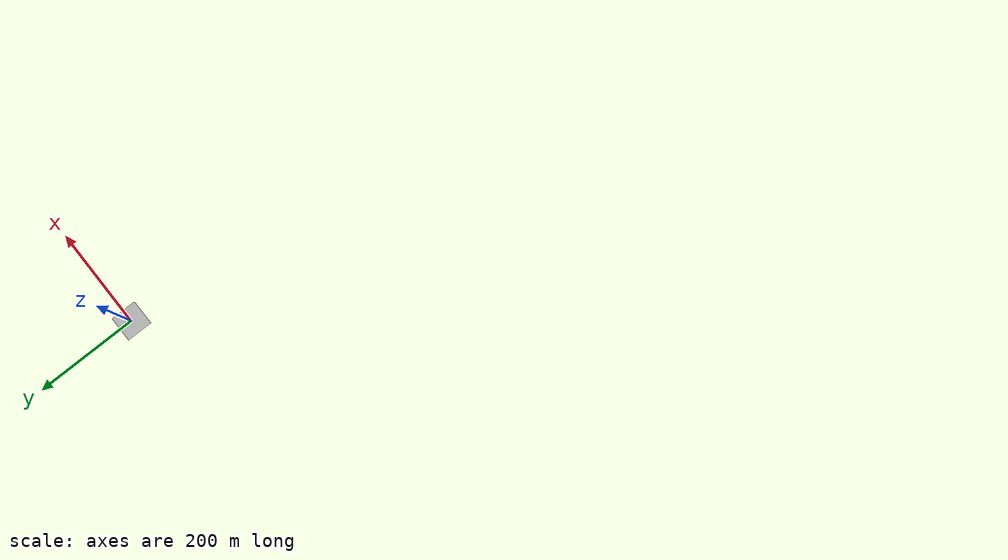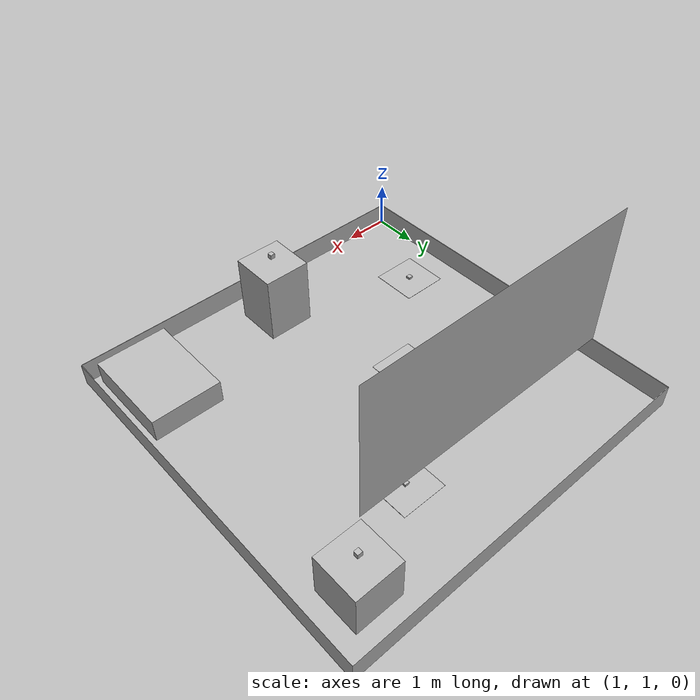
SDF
<?xml version="1.0" ?>
<sdf version="1.10">
  <world name="fase2">
    <plugin
      filename="gz-sim-physics-system"
      name="gz::sim::systems::Physics">
    </plugin>
    <plugin
      filename="gz-sim-user-commands-system"
      name="gz::sim::systems::UserCommands">
    </plugin>
    <plugin
      filename="gz-sim-scene-broadcaster-system"
      name="gz::sim::systems::SceneBroadcaster">
    </plugin>
    <plugin
      filename="gz-sim-sensors-system"
      name="gz::sim::systems::Sensors">
      <render_engine>ogre2</render_engine>
    </plugin>
    <plugin
      filename="gz-sim-imu-system"
      name="gz::sim::systems::Imu">
    </plugin>
    <plugin
      filename="gz-sim-air-speed-system"
      name="gz::sim::systems::AirSpeed">
    </plugin>
    <plugin
      name='gz::sim::systems::AirPressure'
      filename='gz-sim-air-pressure-system'>
    </plugin>

    <light type="directional" name="sun">
      <cast_shadows>true</cast_shadows>
      <pose>0 0 20 0 0 0</pose>
      <ambient>0.8 0.8 0.8 1</ambient>
      <diffuse>1.0 1.0 1.0 1</diffuse>
      <specular>0.2 0.2 0.2 1</specular>
      <attenuation>
        <range>1000</range>
        <constant>0.9</constant>
        <linear>0.01</linear>
        <quadratic>0.001</quadratic>
      </attenuation>
      <direction>-0.5 0.1 -0.9</direction>
    </light>

    <!-- setup shadows {-->
    <scene>
      <shadows>false</shadows>
      <sky>
        <clouds />
      </sky>
    </scene>

    <!-- ground plane {-->
    <model name="ground_plane">
      <static>true</static>
      <link name="link">
        <collision name="collision">
          <pose>0 0 0 0 0 0</pose>
          <geometry>
            <plane>
              <normal>0 0 1</normal>
              <size>250 250</size>
            </plane>
          </geometry>
          <surface>
            <friction>
              <ode>
                <mu>1</mu>
                <mu2>1</mu2>
              </ode>
            </friction>
          </surface>
        </collision>
        <visual name="grass">
          <pose>0 0 0 0 0 0</pose>
          <cast_shadows>false</cast_shadows>
          <geometry>
            <mesh>
              <uri>file://grass_plane/meshes/grass_plane.dae</uri>
            </mesh>
          </geometry>
        </visual>
      </link>
    </model>

    <!-- THE VOID (for spawning objects out of camera view) {-->
    <model name='the_void'>
      <static>1</static>
      <link name='link'>
        <pose frame=''>0 0 0.1 0 -0 0</pose>
        <visual name='the_void'>
          <pose frame=''>0 0 2 0 -0 0</pose>
          <geometry>
            <sphere>
              <radius>0.25</radius>
            </sphere>
          </geometry>
          <material>
            <script>
              <uri>file://media/materials/scripts/Gazebo.material</uri>
              <name>Gazebo/Black</name>
            </script>
          </material>
        </visual>
        <self_collide>0</self_collide>
        <enable_wind>0</enable_wind>
        <kinematic>0</kinematic>
      </link>
      <pose frame=''>-1000 -1000 0 0 0 0</pose>
    </model>

    <!-- user camera {-->
    <gui>
      <camera name="camera">
        <pose>-4 -4 7 0 0.4 0.89</pose>
      </camera>
    </gui>

    <!-- Models Worlds -->

    <!-- THE ARENA MODEL -->
    <model name="arena">
      <include>
        <uri>model://arena_spawn</uri>
        <!-- Pose ( x y z r p y ) -->
        <pose>1 1 0.001 0 -0 0</pose>
      </include>
    </model>

    <!-- THE TAKEOFF PLATFORM MODEL -->
    <model name="takeoff_platform">
      <include>
        <uri>model://takeoff_platform</uri>
        <pose>8.0 2.2 0.0 0.0 -0.0 0.0</pose>
      </include>
    </model>

    <!-- THE BANNER MODEL -->
    <model name="banner">
      <include>
        <uri>model://banner</uri>
        <pose>1.0 -0.6 0.29 3.14 -0 1.57</pose>
      </include>
    </model>

    <!-- THE SUSPENDED LANDING PLATFORM MODEL -->
    <model name="suspended_landing_platform_1">
      <include>
        <uri>model://suspended_landing_platform</uri>
        <pose>8.0 8.0 1.00 0 -0 0</pose>
      </include>
    </model>

    <model name="suspended_landing_platform_2">
      <include>
        <uri>model://suspended_landing_platform</uri>
        <pose>5.0 2.0 1.505 0 -0 0</pose>
      </include>
    </model>

    <!-- THE LANDING PLATFORM MODEL-->
    <model name="landing_platform_1">
      <include>
        <uri>model://landing_platform</uri>
        <pose>4 5 0.01 0 -0 0</pose>
      </include>
    </model>

    <model name="landing_platform_2">
      <include>
        <uri>model://landing_platform</uri>
        <pose>6 7 0.01 0 -0 0</pose>
      </include>
    </model>

    <model name="landing_platform_3">
      <include>
        <uri>model://landing_platform</uri>
        <pose>2 3 0.01 0 -0 0</pose>
      </include>
    </model>

    <!-- THE EQUIPMENT A MODEL -->
    <include>
      <uri>model://qrcode_box_a</uri>
      <!-- Pose ( x y z r p y ) -->
      <pose>4 5 0.015 0 -0 0</pose>
    </include>

    <!-- THE EQUIPMENT B MODEL -->
    <include>
      <uri>model://qrcode_box_b</uri>
      <!-- Pose ( x y z r p y ) -->
      <pose>6 7 0.015 0 -0 0</pose>
    </include>

    <!-- THE EQUIPMENT C MODEL -->
    <include>
      <uri>model://qrcode_box_c</uri>
      <!-- Pose ( x y z r p y ) -->
      <pose>2 3 0.015 0 -0 0</pose>
    </include>

    <!-- THE EQUIPMENT D MODEL -->
    <include>
      <uri>model://qrcode_box_d</uri>
      <!-- Pose ( x y z r p y ) -->
      <pose>5.0 2.0 1.67 0 -0 0</pose>
    </include>

    <!-- THE EQUIPMENT E MODEL -->
    <include>
      <uri>model://qrcode_box_e</uri>
      <!-- Pose ( x y z r p y ) -->
      <pose>8 8 1.17 0 -0 0</pose>
    </include>

  </world>
</sdf>

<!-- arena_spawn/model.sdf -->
<sdf version='1.6'>
  <model name='arena_spawn'>
    <link name='link_arena'>
      <inertial>
        <mass>1</mass>
        <inertia>
          <ixx>0.166667</ixx>
          <ixy>0</ixy>
          <ixz>0</ixz>
          <iyy>0.166667</iyy>
          <iyz>0</iyz>
          <izz>0.166667</izz>
        </inertia>
      </inertial>
      <self_collide>1</self_collide>
      <enable_wind>0</enable_wind>
      <kinematic>0</kinematic>
      <pose frame=''>0 0 0 0 -0 0</pose>
      <visual name='visual'>
        <pose frame=''>0 0 0 0 -0 0</pose>
        <geometry>
          <mesh>
            <uri>model://arena_spawn/meshes/Arena.obj</uri>
            <scale>1 1 1</scale>
          </mesh>
        </geometry>
        <transparency>0</transparency>
        <cast_shadows>1</cast_shadows>
      </visual>
      <collision name='collision'>
        <laser_retro>0</laser_retro>
        <max_contacts>10</max_contacts>
        <pose frame=''>0 0 0 0 -0 0</pose>
        <geometry>
          <mesh>
            <uri>model://arena_spawn/meshes/Arena.obj</uri>
            <scale>1 1 1</scale>
          </mesh>
        </geometry>
        <surface>
          <friction>
            <ode>
              <mu>1</mu>
              <mu2>1</mu2>
              <fdir1>0 0 0</fdir1>
              <slip1>0</slip1>
              <slip2>0</slip2>
            </ode>
            <torsional>
              <coefficient>1</coefficient>
              <patch_radius>100</patch_radius>
              <surface_radius>100</surface_radius>
              <use_patch_radius>1</use_patch_radius>
              <ode>
                <slip>0</slip>
              </ode>
            </torsional>
          </friction>
          <bounce>
            <restitution_coefficient>0</restitution_coefficient>
            <threshold>1e+06</threshold>
          </bounce>
          <contact>
            <collide_without_contact>0</collide_without_contact>
            <collide_without_contact_bitmask>1</collide_without_contact_bitmask>
            <collide_bitmask>1</collide_bitmask>
            <ode>
              <soft_cfm>0</soft_cfm>
              <soft_erp>0.2</soft_erp>
              <kp>1e+13</kp>
              <kd>1</kd>
              <max_vel>0.01</max_vel>
              <min_depth>0</min_depth>
            </ode>
            <bullet>
              <split_impulse>1</split_impulse>
              <split_impulse_penetration_threshold>-0.01</split_impulse_penetration_threshold>
              <soft_cfm>0</soft_cfm>
              <soft_erp>0.2</soft_erp>
              <kp>1e+13</kp>
              <kd>1</kd>
            </bullet>
          </contact>
        </surface>
      </collision>
    </link>
    <static>1</static>
    <pose frame=''>0 0 0.0005 0 -0 0</pose>
  </model>
</sdf>

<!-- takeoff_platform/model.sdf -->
<sdf version='1.6'>
  <model name='takeoff_platform'>
    <link name='link_takeoff_platform'>
      <inertial>
        <mass>15</mass>
        <inertia>
          <ixx>1</ixx>
          <ixy>0</ixy>
          <ixz>0</ixz>
          <iyy>1</iyy>
          <iyz>0</iyz>
          <izz>1</izz>
        </inertia>
      </inertial>
      <self_collide>1</self_collide>
      <enable_wind>0</enable_wind>
      <kinematic>0</kinematic>
      <pose frame=''>0 0 0 0 -0 0</pose>
      <visual name='visual'>
        <pose frame=''>0 0 0 0 -0 0</pose>
        <geometry>
          <mesh>
            <uri>model://takeoff_platform/meshes/takeoff_platform.obj</uri>
            <scale>1 1 1</scale>
          </mesh>
        </geometry>
        <transparency>0</transparency>
        <cast_shadows>1</cast_shadows>
      </visual>
      <collision name='collision'>
        <laser_retro>0</laser_retro>
        <max_contacts>10</max_contacts>
        <pose frame=''>0 0 0 0 -0 0</pose>
        <geometry>
          <mesh>
            <uri>model://takeoff_platform/meshes/takeoff_platform.obj</uri>
            <scale>1 1 1</scale>
          </mesh>
        </geometry>
        <surface>
          <friction>
            <ode>
              <mu>1</mu>
              <mu2>1</mu2>
              <fdir1>0 0 0</fdir1>
              <slip1>0</slip1>
              <slip2>0</slip2>
            </ode>
            <torsional>
              <coefficient>1</coefficient>
              <patch_radius>100</patch_radius>
              <surface_radius>100</surface_radius>
              <use_patch_radius>1</use_patch_radius>
              <ode>
                <slip>0</slip>
              </ode>
            </torsional>
          </friction>
          <bounce>
            <restitution_coefficient>0</restitution_coefficient>
            <threshold>1e+06</threshold>
          </bounce>
          <contact>
            <collide_without_contact>0</collide_without_contact>
            <collide_without_contact_bitmask>1</collide_without_contact_bitmask>
            <collide_bitmask>1</collide_bitmask>
            <ode>
              <soft_cfm>0</soft_cfm>
              <soft_erp>0.2</soft_erp>
              <kp>1e+13</kp>
              <kd>1</kd>
              <max_vel>0.01</max_vel>
              <min_depth>0</min_depth>
            </ode>
            <bullet>
              <split_impulse>1</split_impulse>
              <split_impulse_penetration_threshold>-0.01</split_impulse_penetration_threshold>
              <soft_cfm>0</soft_cfm>
              <soft_erp>0.2</soft_erp>
              <kp>1e+13</kp>
              <kd>1</kd>
            </bullet>
          </contact>
        </surface>
      </collision>
    </link>
    <static>1</static>
    <pose frame=''>0 0 0.0005 0 -0 0</pose>
  </model>
</sdf>

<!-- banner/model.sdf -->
<sdf version='1.6'>
  <model name='banner'>
    <link name='link_0'>
      <inertial>
        <mass>1</mass>
        <inertia>
          <ixx>0.166667</ixx>
          <ixy>0</ixy>
          <ixz>0</ixz>
          <iyy>0.166667</iyy>
          <iyz>0</iyz>
          <izz>0.166667</izz>
        </inertia>
      </inertial>
      <pose>0 0 0 0 -0 0</pose>
      <visual name='visual'>
        <pose>0 0 0 0 -0 0</pose>
        <geometry>
          <mesh>
            <uri>model://banner/meshes/banner.obj</uri>
            <scale>1.0 1.0 1.0</scale>
          </mesh>
        </geometry>
        <transparency>0</transparency>
        <cast_shadows>1</cast_shadows>
      </visual>
      <collision name='collision'>
        <laser_retro>0</laser_retro>
        <max_contacts>10</max_contacts>
        <pose>0 0 0 0 -0 0</pose>
        <geometry>
          <mesh>
            <uri>model://banner/meshes/banner.obj</uri>
            <scale>1.0 1.0 1.0</scale>
          </mesh>
        </geometry>
      </collision>
    </link>
    <static>1</static>
    <allow_auto_disable>1</allow_auto_disable>
  </model>
</sdf>

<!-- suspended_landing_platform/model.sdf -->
<sdf version='1.6'>
  <model name='suspended_landing_platform'>
    <link name='link_suspended_landing_platform'>
      <inertial>
        <mass>1</mass>
        <inertia>
          <ixx>0.166667</ixx>
          <ixy>0</ixy>
          <ixz>0</ixz>
          <iyy>0.166667</iyy>
          <iyz>0</iyz>
          <izz>0.166667</izz>
        </inertia>
        <pose>0 0 0 0 -0 0</pose>
      </inertial>
      <self_collide>0</self_collide>
      <enable_wind>0</enable_wind>
      <kinematic>0</kinematic>
      <pose>0 0 0 0 -0 0</pose>
      <gravity>1</gravity>
      <visual name='visual'>
        <pose frame=''>0 0 0 0 -0 0</pose>
        <geometry>
          <mesh>
            <uri>model://suspended_landing_platform/meshes/suspended_landing_platform.obj</uri>
            <scale>1 1 1</scale>
          </mesh>
        </geometry>
        <transparency>0</transparency>
        <cast_shadows>1</cast_shadows>
      </visual>
      <collision name='collision'>
        <laser_retro>0</laser_retro>
        <max_contacts>10</max_contacts>
        <pose>0 0 -0.75 0 -0 0</pose>
        <geometry>
          <box>
            <size>1 1 1.5</size>
          </box>
        </geometry>
        <surface>
          <friction>
            <ode>
              <mu>100</mu>
              <mu2>100</mu2>
              <fdir1>0 0 0</fdir1>
              <slip1>0</slip1>
              <slip2>0</slip2>
            </ode>
            <torsional>
              <coefficient>1</coefficient>
              <patch_radius>1</patch_radius>
              <surface_radius>1</surface_radius>
              <use_patch_radius>1</use_patch_radius>
              <ode>
                <slip>0</slip>
              </ode>
            </torsional>
          </friction>
          <bounce>
            <restitution_coefficient>1</restitution_coefficient>
            <threshold>1e+06</threshold>
          </bounce>
          <contact>
            <collide_without_contact>0</collide_without_contact>
            <collide_without_contact_bitmask>1</collide_without_contact_bitmask>
            <collide_bitmask>1</collide_bitmask>
            <ode>
              <soft_cfm>0</soft_cfm>
              <soft_erp>0.2</soft_erp>
              <kp>1e+13</kp>
              <kd>1</kd>
              <max_vel>0.01</max_vel>
              <min_depth>0</min_depth>
            </ode>
            <bullet>
              <split_impulse>1</split_impulse>
              <split_impulse_penetration_threshold>-0.01</split_impulse_penetration_threshold>
              <soft_cfm>0</soft_cfm>
              <soft_erp>0.2</soft_erp>
              <kp>1e+13</kp>
              <kd>1</kd>
            </bullet>
          </contact>
        </surface>
      </collision>
    </link>
    <static>1</static>
    <allow_auto_disable>1</allow_auto_disable>
  </model>
</sdf>

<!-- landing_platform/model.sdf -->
<sdf version='1.6'>
  <model name='landing_platform'>
    <link name='link_landing_platform'>
      <inertial>
        <mass>1</mass>
        <inertia>
          <ixx>0.09318</ixx>
          <ixy>0.0</ixy>
          <ixz>0</ixz>
          <iyy>0.09318</iyy>
          <iyz>0</iyz>
          <izz>0.18634</izz>
        </inertia>
        <pose>0 0 0 0 -0 0</pose>
      </inertial>
      <self_collide>0</self_collide>
      <enable_wind>0</enable_wind>
      <kinematic>0</kinematic>
      <pose>0 0 0 0 -0 0</pose>
      <gravity>1</gravity>
      <visual name='visual'>
        <pose frame=''>0 0 0 0 -0 0</pose>
        <geometry>
          <mesh>
            <uri>model://landing_platform/meshes/landing_platform.obj</uri>
            <scale>1 1 1</scale>
          </mesh>
        </geometry>
        <transparency>0</transparency>
        <cast_shadows>1</cast_shadows>
      </visual>
      <collision name='collision'>
        <laser_retro>0</laser_retro>
        <max_contacts>10</max_contacts>
        <pose>0 0 0 0 -0 0</pose>
        <geometry>
          <box>
            <size>1 1 0.005</size>
          </box>
        </geometry>
        <surface>
          <friction>
            <ode>
              <mu>100</mu>
              <mu2>100</mu2>
              <fdir1>0 0 0</fdir1>
              <slip1>0</slip1>
              <slip2>0</slip2>
            </ode>
            <torsional>
              <coefficient>1</coefficient>
              <patch_radius>1</patch_radius>
              <surface_radius>1</surface_radius>
              <use_patch_radius>1</use_patch_radius>
              <ode>
                <slip>0</slip>
              </ode>
            </torsional>
          </friction>
          <bounce>
            <restitution_coefficient>1</restitution_coefficient>
            <threshold>1e+06</threshold>
          </bounce>
          <contact>
            <collide_without_contact>0</collide_without_contact>
            <collide_without_contact_bitmask>1</collide_without_contact_bitmask>
            <collide_bitmask>1</collide_bitmask>
            <ode>
              <soft_cfm>0</soft_cfm>
              <soft_erp>0.2</soft_erp>
              <kp>1e+13</kp>
              <kd>1</kd>
              <max_vel>0.01</max_vel>
              <min_depth>0</min_depth>
            </ode>
            <bullet>
              <split_impulse>1</split_impulse>
              <split_impulse_penetration_threshold>-0.01</split_impulse_penetration_threshold>
              <soft_cfm>0</soft_cfm>
              <soft_erp>0.2</soft_erp>
              <kp>1e+13</kp>
              <kd>1</kd>
            </bullet>
          </contact>
        </surface>
      </collision>
    </link>
    <static>1</static>
    <allow_auto_disable>1</allow_auto_disable>
  </model>
</sdf>

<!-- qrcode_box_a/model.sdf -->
<sdf version='1.6'>
  <model name='qrcode_box_a'>
    <link name='link_qrcode_box_a'>
      <inertial>
        <mass>0.160</mass>
        <inertia>
          <ixx>0.000272</ixx>
          <ixy>0</ixy>
          <ixz>0</ixz>
          <iyy>0.000272</iyy>
          <iyz>0</iyz>
          <izz>0.000272</izz>
        </inertia>
        <pose>0 0 0 0 -0 0</pose>
      </inertial>
      <self_collide>0</self_collide>
      <enable_wind>0</enable_wind>
      <kinematic>0</kinematic>
      <pose>0 0 0 0 -0 0</pose>
      <gravity>1</gravity>
      <visual name='visual'>
        <pose frame=''>0 0 0 0 -0 0</pose>
        <geometry>
          <mesh>
            <uri>model://qrcode_box_a/meshes/qrcode_box_a.obj</uri>
            <scale>1 1 1</scale>
          </mesh>
        </geometry>
        <transparency>0</transparency>
        <cast_shadows>1</cast_shadows>
      </visual>
      <collision name='collision'>
        <laser_retro>1</laser_retro>
        <max_contacts>100000</max_contacts>
        <pose>0 0 0 0 -0 0</pose>
        <geometry>
          <box>
            <size>0.1 0.1 0.1</size>
          </box>
        </geometry>
        <surface>
          <friction>
            <ode>
              <mu>1</mu>
              <mu2>1</mu2>
              <fdir1>0 0 0</fdir1>
              <slip1>0</slip1>
              <slip2>0</slip2>
            </ode>
            <torsional>
              <coefficient>1</coefficient>
              <patch_radius>1</patch_radius>
              <surface_radius>1</surface_radius>
              <use_patch_radius>1</use_patch_radius>
              <ode>
                <slip>0</slip>
              </ode>
            </torsional>
          </friction>
          <bounce>
            <restitution_coefficient>0</restitution_coefficient>
            <threshold>1e+06</threshold>
          </bounce>
          <contact>
            <collide_without_contact>0</collide_without_contact>
            <collide_without_contact_bitmask>1</collide_without_contact_bitmask>
            <collide_bitmask>1</collide_bitmask>
            <ode>
              <soft_cfm>0</soft_cfm>
              <soft_erp>0.2</soft_erp>
              <kp>1e+13</kp>
              <kd>1</kd>
              <max_vel>0.01</max_vel>
              <min_depth>0</min_depth>
            </ode>
            <bullet>
              <split_impulse>1</split_impulse>
              <split_impulse_penetration_threshold>-0.01</split_impulse_penetration_threshold>
              <soft_cfm>0</soft_cfm>
              <soft_erp>0.2</soft_erp>
              <kp>1e+13</kp>
              <kd>1</kd>
            </bullet>
          </contact>
        </surface>
      </collision>
    </link>
    <static>0</static>
    <allow_auto_disable>1</allow_auto_disable>
  </model>
</sdf>

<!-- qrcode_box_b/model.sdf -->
<sdf version='1.6'>
  <model name='qrcode_box_b'>
    <link name='link_qrcode_box_b'>
      <inertial>
        <mass>0.160</mass>
        <inertia>
          <ixx>0.000272</ixx>
          <ixy>0</ixy>
          <ixz>0</ixz>
          <iyy>0.000272</iyy>
          <iyz>0</iyz>
          <izz>0.000272</izz>
        </inertia>
        <pose>0 0 0 0 -0 0</pose>
      </inertial>
      <self_collide>0</self_collide>
      <enable_wind>0</enable_wind>
      <kinematic>0</kinematic>
      <pose>0 0 0 0 -0 0</pose>
      <gravity>1</gravity>
      <visual name='visual'>
        <pose frame=''>0 0 0 0 -0 0</pose>
        <geometry>
          <mesh>
            <uri>model://qrcode_box_b/meshes/qrcode_box_b.obj</uri>
            <scale>1 1 1</scale>
          </mesh>
        </geometry>
        <transparency>0</transparency>
        <cast_shadows>1</cast_shadows>
      </visual>
      <collision name='collision'>
        <laser_retro>1</laser_retro>
        <max_contacts>100000</max_contacts>
        <pose>0 0 0 0 -0 0</pose>
        <geometry>
          <box>
            <size>0.1 0.1 0.1</size>
          </box>
        </geometry>
        <surface>
          <friction>
            <ode>
              <mu>1</mu>
              <mu2>1</mu2>
              <fdir1>0 0 0</fdir1>
              <slip1>0</slip1>
              <slip2>0</slip2>
            </ode>
            <torsional>
              <coefficient>1</coefficient>
              <patch_radius>1</patch_radius>
              <surface_radius>1</surface_radius>
              <use_patch_radius>1</use_patch_radius>
              <ode>
                <slip>0</slip>
              </ode>
            </torsional>
          </friction>
          <bounce>
            <restitution_coefficient>0</restitution_coefficient>
            <threshold>1e+06</threshold>
          </bounce>
          <contact>
            <collide_without_contact>0</collide_without_contact>
            <collide_without_contact_bitmask>1</collide_without_contact_bitmask>
            <collide_bitmask>1</collide_bitmask>
            <ode>
              <soft_cfm>0</soft_cfm>
              <soft_erp>0.2</soft_erp>
              <kp>1e+13</kp>
              <kd>1</kd>
              <max_vel>0.01</max_vel>
              <min_depth>0</min_depth>
            </ode>
            <bullet>
              <split_impulse>1</split_impulse>
              <split_impulse_penetration_threshold>-0.01</split_impulse_penetration_threshold>
              <soft_cfm>0</soft_cfm>
              <soft_erp>0.2</soft_erp>
              <kp>1e+13</kp>
              <kd>1</kd>
            </bullet>
          </contact>
        </surface>
      </collision>
    </link>
    <static>0</static>
    <allow_auto_disable>1</allow_auto_disable>
  </model>
</sdf>

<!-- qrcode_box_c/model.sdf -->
<sdf version='1.6'>
  <model name='qrcode_box_c'>
    <link name='link_qrcode_box_c'>
      <inertial>
        <mass>0.160</mass>
        <inertia>
          <ixx>0.000272</ixx>
          <ixy>0</ixy>
          <ixz>0</ixz>
          <iyy>0.000272</iyy>
          <iyz>0</iyz>
          <izz>0.000272</izz>
        </inertia>
        <pose>0 0 0 0 -0 0</pose>
      </inertial>
      <self_collide>0</self_collide>
      <enable_wind>0</enable_wind>
      <kinematic>0</kinematic>
      <pose>0 0 0 0 -0 0</pose>
      <gravity>1</gravity>
      <visual name='visual'>
        <pose frame=''>0 0 0 0 -0 0</pose>
        <geometry>
          <mesh>
            <uri>model://qrcode_box_c/meshes/qrcode_box_c.obj</uri>
            <scale>1 1 1</scale>
          </mesh>
        </geometry>
        <transparency>0</transparency>
        <cast_shadows>1</cast_shadows>
      </visual>
      <collision name='collision'>
        <laser_retro>1</laser_retro>
        <max_contacts>100000</max_contacts>
        <pose>0 0 0 0 -0 0</pose>
        <geometry>
          <box>
            <size>0.1 0.1 0.1</size>
          </box>
        </geometry>
        <surface>
          <friction>
            <ode>
              <mu>1</mu>
              <mu2>1</mu2>
              <fdir1>0 0 0</fdir1>
              <slip1>0</slip1>
              <slip2>0</slip2>
            </ode>
            <torsional>
              <coefficient>1</coefficient>
              <patch_radius>1</patch_radius>
              <surface_radius>1</surface_radius>
              <use_patch_radius>1</use_patch_radius>
              <ode>
                <slip>0</slip>
              </ode>
            </torsional>
          </friction>
          <bounce>
            <restitution_coefficient>0</restitution_coefficient>
            <threshold>1e+06</threshold>
          </bounce>
          <contact>
            <collide_without_contact>0</collide_without_contact>
            <collide_without_contact_bitmask>1</collide_without_contact_bitmask>
            <collide_bitmask>1</collide_bitmask>
            <ode>
              <soft_cfm>0</soft_cfm>
              <soft_erp>0.2</soft_erp>
              <kp>1e+13</kp>
              <kd>1</kd>
              <max_vel>0.01</max_vel>
              <min_depth>0</min_depth>
            </ode>
            <bullet>
              <split_impulse>1</split_impulse>
              <split_impulse_penetration_threshold>-0.01</split_impulse_penetration_threshold>
              <soft_cfm>0</soft_cfm>
              <soft_erp>0.2</soft_erp>
              <kp>1e+13</kp>
              <kd>1</kd>
            </bullet>
          </contact>
        </surface>
      </collision>
    </link>
    <static>0</static>
    <allow_auto_disable>1</allow_auto_disable>
  </model>
</sdf>

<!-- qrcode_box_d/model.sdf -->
<sdf version='1.6'>
  <model name='qrcode_box_d'>
    <link name='link_qrcode_box_d'>
      <inertial>
        <mass>0.160</mass>
        <inertia>
          <ixx>0.000272</ixx>
          <ixy>0</ixy>
          <ixz>0</ixz>
          <iyy>0.000272</iyy>
          <iyz>0</iyz>
          <izz>0.000272</izz>
        </inertia>
        <pose>0 0 0 0 -0 0</pose>
      </inertial>
      <self_collide>0</self_collide>
      <enable_wind>0</enable_wind>
      <kinematic>0</kinematic>
      <pose>0 0 0 0 -0 0</pose>
      <gravity>1</gravity>
      <visual name='visual'>
        <pose frame=''>0 0 0 0 -0 0</pose>
        <geometry>
          <mesh>
            <uri>model://qrcode_box_d/meshes/qrcode_box_d.obj</uri>
            <scale>1 1 1</scale>
          </mesh>
        </geometry>
        <transparency>0</transparency>
        <cast_shadows>1</cast_shadows>
      </visual>
      <collision name='collision'>
        <laser_retro>1</laser_retro>
        <max_contacts>100000</max_contacts>
        <pose>0 0 0 0 -0 0</pose>
        <geometry>
          <box>
            <size>0.1 0.1 0.1</size>
          </box>
        </geometry>
        <surface>
          <friction>
            <ode>
              <mu>1</mu>
              <mu2>1</mu2>
              <fdir1>0 0 0</fdir1>
              <slip1>0</slip1>
              <slip2>0</slip2>
            </ode>
            <torsional>
              <coefficient>1</coefficient>
              <patch_radius>1</patch_radius>
              <surface_radius>1</surface_radius>
              <use_patch_radius>1</use_patch_radius>
              <ode>
                <slip>0</slip>
              </ode>
            </torsional>
          </friction>
          <bounce>
            <restitution_coefficient>0</restitution_coefficient>
            <threshold>1e+06</threshold>
          </bounce>
          <contact>
            <collide_without_contact>0</collide_without_contact>
            <collide_without_contact_bitmask>1</collide_without_contact_bitmask>
            <collide_bitmask>1</collide_bitmask>
            <ode>
              <soft_cfm>0</soft_cfm>
              <soft_erp>0.2</soft_erp>
              <kp>1e+13</kp>
              <kd>1</kd>
              <max_vel>0.01</max_vel>
              <min_depth>0</min_depth>
            </ode>
            <bullet>
              <split_impulse>1</split_impulse>
              <split_impulse_penetration_threshold>-0.01</split_impulse_penetration_threshold>
              <soft_cfm>0</soft_cfm>
              <soft_erp>0.2</soft_erp>
              <kp>1e+13</kp>
              <kd>1</kd>
            </bullet>
          </contact>
        </surface>
      </collision>
    </link>
    <static>0</static>
    <allow_auto_disable>1</allow_auto_disable>
  </model>
</sdf>

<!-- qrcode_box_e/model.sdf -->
<sdf version='1.6'>
  <model name='qrcode_box_e'>
    <link name='link_qrcode_box_e'>
      <inertial>
        <mass>0.160</mass>
        <inertia>
          <ixx>0.000272</ixx>
          <ixy>0</ixy>
          <ixz>0</ixz>
          <iyy>0.000272</iyy>
          <iyz>0</iyz>
          <izz>0.000272</izz>
        </inertia>
        <pose>0 0 0 0 -0 0</pose>
      </inertial>
      <self_collide>0</self_collide>
      <enable_wind>0</enable_wind>
      <kinematic>0</kinematic>
      <pose>0 0 0 0 -0 0</pose>
      <gravity>1</gravity>
      <visual name='visual'>
        <pose frame=''>0 0 0 0 -0 0</pose>
        <geometry>
          <mesh>
            <uri>model://qrcode_box_e/meshes/qrcode_box_e.obj</uri>
            <scale>1 1 1</scale>
          </mesh>
        </geometry>
        <transparency>0</transparency>
        <cast_shadows>1</cast_shadows>
      </visual>
      <collision name='collision'>
        <laser_retro>1</laser_retro>
        <max_contacts>100000</max_contacts>
        <pose>0 0 0 0 -0 0</pose>
        <geometry>
          <box>
            <size>0.1 0.1 0.1</size>
          </box>
        </geometry>
        <surface>
          <friction>
            <ode>
              <mu>1</mu>
              <mu2>1</mu2>
              <fdir1>0 0 0</fdir1>
              <slip1>0</slip1>
              <slip2>0</slip2>
            </ode>
            <torsional>
              <coefficient>1</coefficient>
              <patch_radius>1</patch_radius>
              <surface_radius>1</surface_radius>
              <use_patch_radius>1</use_patch_radius>
              <ode>
                <slip>0</slip>
              </ode>
            </torsional>
          </friction>
          <bounce>
            <restitution_coefficient>0</restitution_coefficient>
            <threshold>1e+06</threshold>
          </bounce>
          <contact>
            <collide_without_contact>0</collide_without_contact>
            <collide_without_contact_bitmask>1</collide_without_contact_bitmask>
            <collide_bitmask>1</collide_bitmask>
            <ode>
              <soft_cfm>0</soft_cfm>
              <soft_erp>0.2</soft_erp>
              <kp>1e+13</kp>
              <kd>1</kd>
              <max_vel>0.01</max_vel>
              <min_depth>0</min_depth>
            </ode>
            <bullet>
              <split_impulse>1</split_impulse>
              <split_impulse_penetration_threshold>-0.01</split_impulse_penetration_threshold>
              <soft_cfm>0</soft_cfm>
              <soft_erp>0.2</soft_erp>
              <kp>1e+13</kp>
              <kd>1</kd>
            </bullet>
          </contact>
        </surface>
      </collision>
    </link>
    <static>0</static>
    <allow_auto_disable>1</allow_auto_disable>
  </model>
</sdf>
